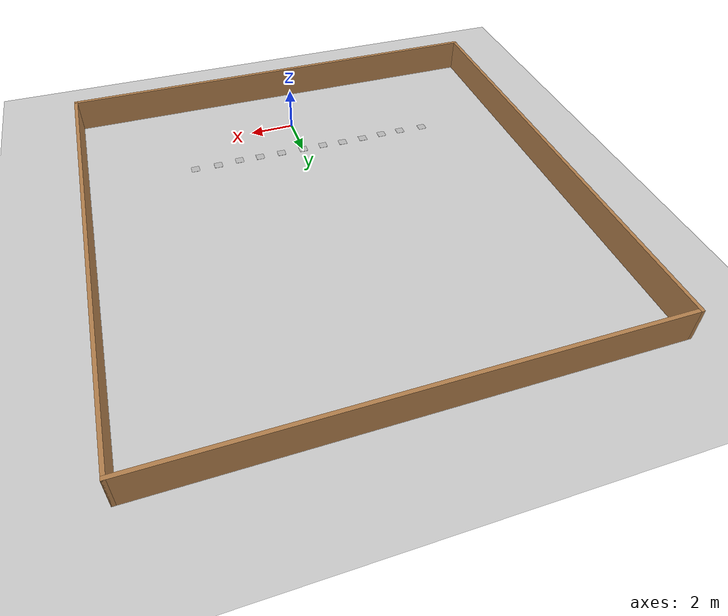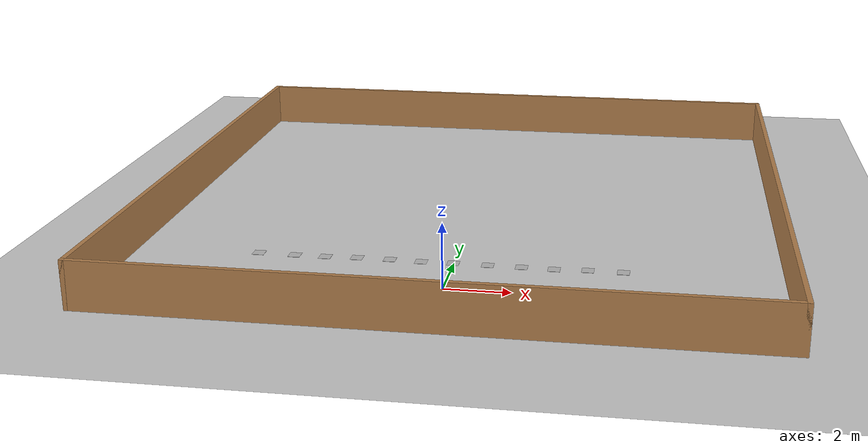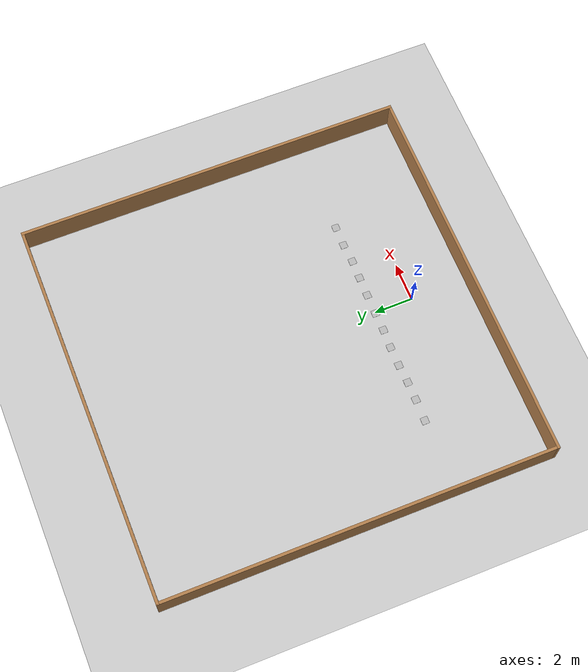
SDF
<sdf version="1.7">
 <world name="default">
  <light name="sun" type="directional">
   <pose>0 0 10 0 -0 0</pose>
   <diffuse>0.8 0.8 0.8 1</diffuse>
   <specular>0.2 0.2 0.2 1</specular>
   <attenuation>
    <range>1000</range>
    <constant>0.9</constant>
    <linear>0.01</linear>
    <quadratic>0.001</quadratic>
   </attenuation>
   <direction>-0.5 0.1 -0.9</direction>
   <spot><inner_angle>0</inner_angle><outer_angle>0</outer_angle><falloff>0</falloff></spot>
  </light>
  <model name="ground_plane">
   <static>1</static>
   <link name="link">
    <collision name="collision">
     <geometry><plane><normal>0 0 1</normal><size>100 100</size></plane></geometry>
     <surface>
      <contact><collide_bitmask>65535</collide_bitmask></contact>
      <friction><ode><mu>100</mu><mu2>50</mu2></ode></friction>
     </surface>
    </collision>
    <visual name="visual">
     <cast_shadows>0</cast_shadows>
     <geometry><plane><normal>0 0 1</normal><size>100 100</size></plane></geometry>
     <material>
      <script><uri>file://media/materials/scripts/gazebo.material</uri><name>Gazebo/Grey</name></script>
     </material>
    </visual>
   </link>
  </model>
  <gravity>0 0 -9.8</gravity>
  <magnetic_field>6e-06 2.3e-05 -4.2e-05</magnetic_field>
  <atmosphere type="adiabatic"/>
  <physics type="ode">
   <max_step_size>0.001</max_step_size>
   <real_time_factor>1</real_time_factor>
   <real_time_update_rate>1000</real_time_update_rate>
  </physics>
  <scene><ambient>0.4 0.4 0.4 1</ambient><background>0.7 0.7 0.7 1</background><shadows>1</shadows></scene>
  <spherical_coordinates>
   <surface_model>EARTH_WGS84</surface_model>
   <latitude_deg>0</latitude_deg>
   <longitude_deg>0</longitude_deg>
   <elevation>0</elevation>
   <heading_deg>0</heading_deg>
  </spherical_coordinates>
  <model name="Bound_Wall">
   <pose>-0.075 7 0 0 -0 0</pose>
   <link name="Wall_0">
    <collision name="Wall_0_Collision">
     <geometry><box><size>20 0.15 1.5</size></box></geometry>
     <pose>0 0 0.75 0 -0 0</pose>
    </collision>
    <visual name="Wall_0_Visual">
     <pose>0 0 0.75 0 -0 0</pose>
     <geometry><box><size>20 0.15 1.5</size></box></geometry>
     <material>
      <script><uri>file://media/materials/scripts/gazebo.material</uri><name>Gazebo/Wood</name></script>
      <ambient>1 1 1 1</ambient>
     </material>
     <meta><layer>0</layer></meta>
    </visual>
    <pose>-0 -9.9405 0 0 -0 0</pose>
   </link>
   <link name="Wall_2">
    <collision name="Wall_2_Collision">
     <geometry><box><size>20.031 0.15 1.5</size></box></geometry>
     <pose>0 0 0.75 0 -0 0</pose>
    </collision>
    <visual name="Wall_2_Visual">
     <pose>0 0 0.75 0 -0 0</pose>
     <geometry><box><size>20.031 0.15 1.5</size></box></geometry>
     <material>
      <script><uri>file://media/materials/scripts/gazebo.material</uri><name>Gazebo/Wood</name></script>
      <ambient>1 1 1 1</ambient>
     </material>
     <meta><layer>0</layer></meta>
    </visual>
    <pose>-9.925 -0 0 0 -0 1.5708</pose>
   </link>
   <link name="Wall_4">
    <collision name="Wall_4_Collision">
     <geometry><box><size>20 0.15 1.5</size></box></geometry>
     <pose>0 0 0.75 0 -0 0</pose>
    </collision>
    <visual name="Wall_4_Visual">
     <pose>0 0 0.75 0 -0 0</pose>
     <geometry><box><size>20 0.15 1.5</size></box></geometry>
     <material>
      <script><uri>file://media/materials/scripts/gazebo.material</uri><name>Gazebo/Wood</name></script>
      <ambient>1 1 1 1</ambient>
     </material>
     <meta><layer>0</layer></meta>
    </visual>
    <pose>-0 9.9405 0 0 -0 0</pose>
   </link>
   <link name="Wall_6">
    <collision name="Wall_6_Collision">
     <geometry><box><size>20.031 0.15 1.5</size></box></geometry>
     <pose>0 0 0.75 0 -0 0</pose>
    </collision>
    <visual name="Wall_6_Visual">
     <pose>0 0 0.75 0 -0 0</pose>
     <geometry><box><size>20.031 0.15 1.5</size></box></geometry>
     <material>
      <script><uri>file://media/materials/scripts/gazebo.material</uri><name>Gazebo/Wood</name></script>
      <ambient>1 1 1 1</ambient>
     </material>
     <meta><layer>0</layer></meta>
    </visual>
    <pose>9.925 -0 0 0 -0 -1.5708</pose>
   </link>
   <static>1</static>
  </model>
  <model name="VICTIM_0">
   <static>1</static>
   <link name="link">
    <collision name="collision"><geometry><box><size>0.3702 0.3702 0.01</size></box></geometry></collision>
    <visual name="visual">
     <cast_shadows>0</cast_shadows>
     <geometry><box><size>0.3702 0.3702 0.01</size></box></geometry>
     <material>
      <script>
       <uri>model://VICTIM_0/materials/scripts</uri>
       <uri>model://VICTIM_0/materials/textures</uri>
       <name>VICTIM_0</name>
      </script>
     </material>
    </visual>
   </link>
   <pose>-6.09398 1.99538 0 0 -0 0</pose>
  </model>
  <model name="VICTIM_1">
   <static>1</static>
   <link name="link">
    <collision name="collision"><geometry><box><size>0.3702 0.3702 0.01</size></box></geometry></collision>
    <visual name="visual">
     <cast_shadows>0</cast_shadows>
     <geometry><box><size>0.3702 0.3702 0.01</size></box></geometry>
     <material>
      <script>
       <uri>model://VICTIM_1/materials/scripts</uri>
       <uri>model://VICTIM_1/materials/textures</uri>
       <name>VICTIM_1</name>
      </script>
     </material>
    </visual>
   </link>
   <pose>-4.95263 1.96505 0 0 -0 0</pose>
  </model>
  <model name="VICTIM_2">
   <static>1</static>
   <link name="link">
    <collision name="collision"><geometry><box><size>0.3702 0.3702 0.01</size></box></geometry></collision>
    <visual name="visual">
     <cast_shadows>0</cast_shadows>
     <geometry><box><size>0.3702 0.3702 0.01</size></box></geometry>
     <material>
      <script>
       <uri>model://VICTIM_2/materials/scripts</uri>
       <uri>model://VICTIM_2/materials/textures</uri>
       <name>VICTIM_2</name>
      </script>
     </material>
    </visual>
   </link>
   <pose>-3.98969 1.9692 0 0 -0 0</pose>
  </model>
  <model name="VICTIM_3">
   <static>1</static>
   <link name="link">
    <collision name="collision"><geometry><box><size>0.3702 0.3702 0.01</size></box></geometry></collision>
    <visual name="visual">
     <cast_shadows>0</cast_shadows>
     <geometry><box><size>0.3702 0.3702 0.01</size></box></geometry>
     <material>
      <script>
       <uri>model://VICTIM_3/materials/scripts</uri>
       <uri>model://VICTIM_3/materials/textures</uri>
       <name>VICTIM_3</name>
      </script>
     </material>
    </visual>
   </link>
   <pose>-3.00858 2.01793 0 0 -0 0</pose>
  </model>
  <model name="VICTIM_4">
   <static>1</static>
   <link name="link">
    <collision name="collision"><geometry><box><size>0.3702 0.3702 0.01</size></box></geometry></collision>
    <visual name="visual">
     <cast_shadows>0</cast_shadows>
     <geometry><box><size>0.3702 0.3702 0.01</size></box></geometry>
     <material>
      <script>
       <uri>model://VICTIM_4/materials/scripts</uri>
       <uri>model://VICTIM_4/materials/textures</uri>
       <name>VICTIM_4</name>
      </script>
     </material>
    </visual>
   </link>
   <pose>-1.98435 2.02062 0 0 -0 0</pose>
  </model>
  <model name="VICTIM_5">
   <static>1</static>
   <link name="link">
    <collision name="collision"><geometry><box><size>0.3702 0.3702 0.01</size></box></geometry></collision>
    <visual name="visual">
     <cast_shadows>0</cast_shadows>
     <geometry><box><size>0.3702 0.3702 0.01</size></box></geometry>
     <material>
      <script>
       <uri>model://VICTIM_5/materials/scripts</uri>
       <uri>model://VICTIM_5/materials/textures</uri>
       <name>VICTIM_5</name>
      </script>
     </material>
    </visual>
   </link>
   <pose>-1.0082 1.97971 0 0 -0 0</pose>
  </model>
  <model name="VICTIM_6">
   <static>1</static>
   <link name="link">
    <collision name="collision"><geometry><box><size>0.3702 0.3702 0.01</size></box></geometry></collision>
    <visual name="visual">
     <cast_shadows>0</cast_shadows>
     <geometry><box><size>0.3702 0.3702 0.01</size></box></geometry>
     <material>
      <script>
       <uri>model://VICTIM_6/materials/scripts</uri>
       <uri>model://VICTIM_6/materials/textures</uri>
       <name>VICTIM_6</name>
      </script>
     </material>
    </visual>
   </link>
   <pose>-0.027393 1.99844 0 0 -0 0</pose>
  </model>
  <model name="VICTIM_7">
   <static>1</static>
   <link name="link">
    <collision name="collision"><geometry><box><size>0.3702 0.3702 0.01</size></box></geometry></collision>
    <visual name="visual">
     <cast_shadows>0</cast_shadows>
     <geometry><box><size>0.3702 0.3702 0.01</size></box></geometry>
     <material>
      <script>
       <uri>model://VICTIM_7/materials/scripts</uri>
       <uri>model://VICTIM_7/materials/textures</uri>
       <name>VICTIM_7</name>
      </script>
     </material>
    </visual>
   </link>
   <pose>1.02699 1.98537 0 0 -0 0</pose>
  </model>
  <model name="Danger_8">
   <static>1</static>
   <link name="link">
    <collision name="collision"><geometry><box><size>0.3702 0.3702 0.01</size></box></geometry></collision>
    <visual name="visual">
     <cast_shadows>0</cast_shadows>
     <geometry><box><size>0.3702 0.3702 0.01</size></box></geometry>
     <material>
      <script>
       <uri>model://Danger_8/materials/scripts</uri>
       <uri>model://Danger_8/materials/textures</uri>
       <name>Danger_8</name>
      </script>
     </material>
    </visual>
   </link>
   <pose>2.05134 1.97314 0 0 -0 0</pose>
  </model>
  <model name="Danger_9">
   <static>1</static>
   <link name="link">
    <collision name="collision"><geometry><box><size>0.3702 0.3702 0.01</size></box></geometry></collision>
    <visual name="visual">
     <cast_shadows>0</cast_shadows>
     <geometry><box><size>0.3702 0.3702 0.01</size></box></geometry>
     <material>
      <script>
       <uri>model://Danger_9/materials/scripts</uri>
       <uri>model://Danger_9/materials/textures</uri>
       <name>Danger_9</name>
      </script>
     </material>
    </visual>
   </link>
   <pose>3.02926 1.94709 0 0 -0 0</pose>
  </model>
  <model name="Danger_10">
   <static>1</static>
   <link name="link">
    <collision name="collision"><geometry><box><size>0.3702 0.3702 0.01</size></box></geometry></collision>
    <visual name="visual">
     <cast_shadows>0</cast_shadows>
     <geometry><box><size>0.3702 0.3702 0.01</size></box></geometry>
     <material>
      <script>
       <uri>model://Danger_10/materials/scripts</uri>
       <uri>model://Danger_10/materials/textures</uri>
       <name>Danger_10</name>
      </script>
     </material>
    </visual>
   </link>
   <pose>4.03352 2.01051 0 0 -0 0</pose>
  </model>
  <model name="Danger_11">
   <static>1</static>
   <link name="link">
    <collision name="collision"><geometry><box><size>0.3702 0.3702 0.01</size></box></geometry></collision>
    <visual name="visual">
     <cast_shadows>0</cast_shadows>
     <geometry><box><size>0.3702 0.3702 0.01</size></box></geometry>
     <material>
      <script>
       <uri>model://Danger_11/materials/scripts</uri>
       <uri>model://Danger_11/materials/textures</uri>
       <name>Danger_11</name>
      </script>
     </material>
    </visual>
   </link>
   <pose>5.08895 1.99732 0 0 -0 0</pose>
  </model>
 </world>
</sdf>
